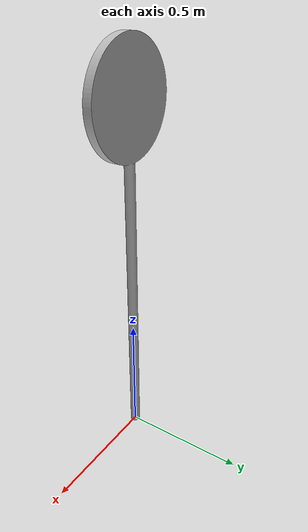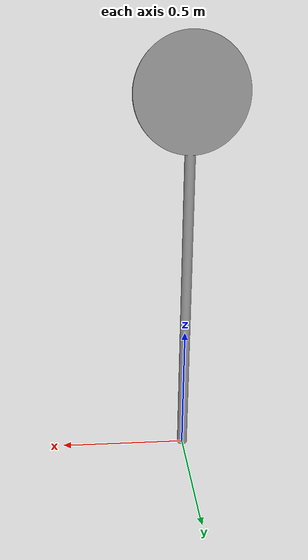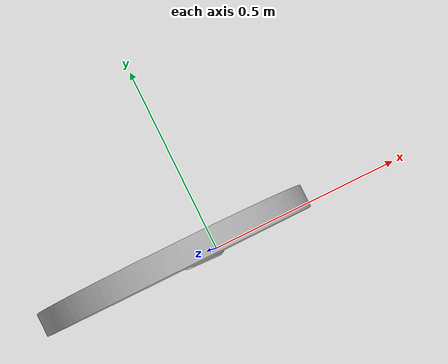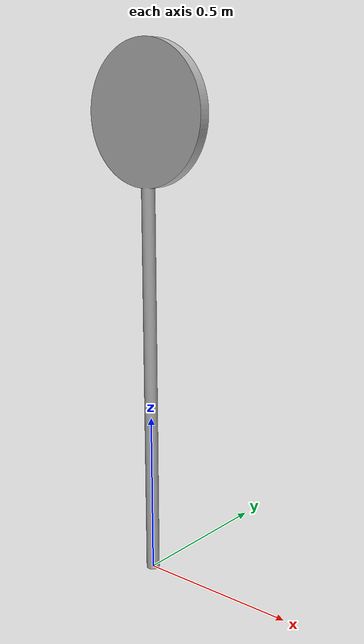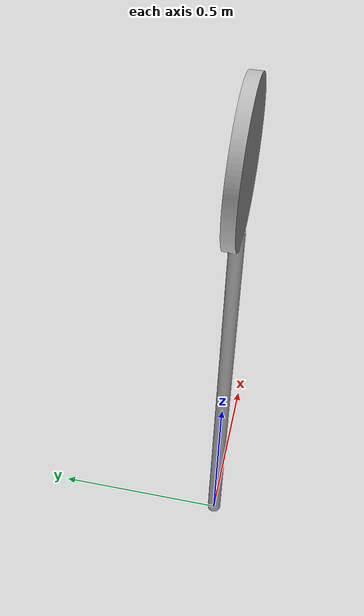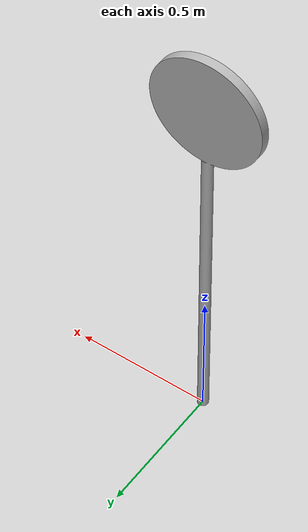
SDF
<?xml version='1.0'?>
<sdf version='1.4'>
  <model name='speed_limit_10'>
    <static>true</static>
    <link name="speed_limit_10">
      <visual name="visual">
            <geometry>
                <mesh>
                    <uri>model://speed_limit_10/materials/meshes/speed_limit_10.dae</uri>
                    <scale>0.5 0.5 0.5</scale>
                </mesh>
            </geometry>
        </visual>
        <collision name="collision">
            <geometry>
                <mesh>
                    <uri>model://speed_limit_10/materials/meshes/speed_limit_10.dae</uri>
                    <scale>0.5 0.5 0.5</scale>
                </mesh>
            </geometry>
        </collision>
    </link>
  </model>
</sdf>
